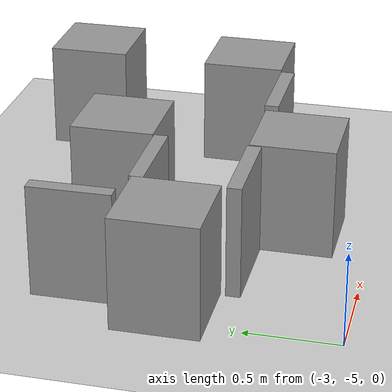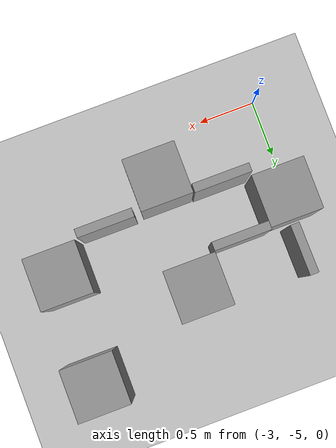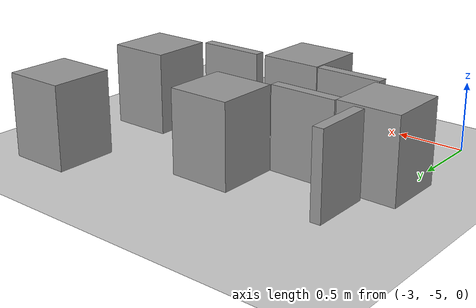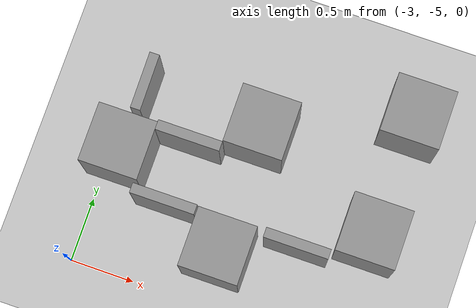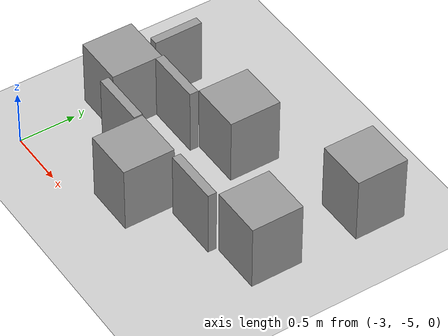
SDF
<sdf version="1.7">
 <world name="default">
  <model name="ground_plane">
   <static>1</static>
   <link name="link">
    <collision name="collision">
     <geometry><plane><normal>0 0 1</normal><size>100 100</size></plane></geometry>
     <surface>
      <contact><collide_bitmask>65535</collide_bitmask></contact>
      <friction><ode><mu>100</mu><mu2>50</mu2></ode></friction>
     </surface>
    </collision>
    <visual name="visual">
     <cast_shadows>0</cast_shadows>
     <geometry><plane><normal>0 0 1</normal><size>100 100</size></plane></geometry>
     <material>
      <script><uri>file://media/materials/scripts/gazebo.material</uri><name>Gazebo/Grey</name></script>
     </material>
    </visual>
   </link>
  </model>
  <model name="lab_box_clone">
   <link name="link">
    <inertial>
     <mass>1</mass>
     <inertia>
      <ixx>0.166667</ixx>
      <ixy>0</ixy>
      <ixz>0</ixz>
      <iyy>0.166667</iyy>
      <iyz>0</iyz>
      <izz>0.166667</izz>
     </inertia>
    </inertial>
    <visual name="visual">
     <geometry><box><size>0.457 0.457 0.609</size></box></geometry>
     <material>
      <script><name>Gazebo/Grey</name><uri>file://media/materials/scripts/gazebo.material</uri></script>
      <shader type="pixel"><normal_map>__default__</normal_map></shader>
      <ambient>0.3 0.3 0.3 1</ambient>
      <diffuse>0.7 0.7 0.7 1</diffuse>
      <specular>0.01 0.01 0.01 1</specular>
      <emissive>0 0 0 1</emissive>
     </material>
    </visual>
    <collision name="collision">
     <geometry><box><size>0.457 0.457 0.609</size></box></geometry>
     <surface>
      <friction>
       <ode><mu>1</mu><mu2>1</mu2><fdir1>0 0 0</fdir1><slip1>0</slip1><slip2>0</slip2></ode>
       <torsional>
        <coefficient>1</coefficient>
        <patch_radius>0</patch_radius>
        <surface_radius>0</surface_radius>
        <use_patch_radius>1</use_patch_radius>
        <ode><slip>0</slip></ode>
       </torsional>
      </friction>
      <bounce><restitution_coefficient>0</restitution_coefficient><threshold>1e+06</threshold></bounce>
      <contact>
       <collide_without_contact>0</collide_without_contact>
       <collide_without_contact_bitmask>1</collide_without_contact_bitmask>
       <collide_bitmask>1</collide_bitmask>
       <ode>
        <soft_cfm>0</soft_cfm>
        <soft_erp>0.2</soft_erp>
        <kp>1e+13</kp>
        <kd>1</kd>
        <max_vel>0.01</max_vel>
        <min_depth>0</min_depth>
       </ode>
       <bullet>
        <split_impulse>1</split_impulse>
        <split_impulse_penetration_threshold>-0.01</split_impulse_penetration_threshold>
        <soft_cfm>0</soft_cfm>
        <soft_erp>0.2</soft_erp>
        <kp>1e+13</kp>
        <kd>1</kd>
       </bullet>
      </contact>
     </surface>
    </collision>
   </link>
   <static>0</static>
   <pose>-1.9452 -4.5883 0.3045 0 -0 0</pose>
  </model>
  <model name="lab_box_clone_0">
   <link name="link">
    <inertial>
     <mass>1</mass>
     <inertia>
      <ixx>0.166667</ixx>
      <ixy>0</ixy>
      <ixz>0</ixz>
      <iyy>0.166667</iyy>
      <iyz>0</iyz>
      <izz>0.166667</izz>
     </inertia>
    </inertial>
    <visual name="visual">
     <geometry><box><size>0.457 0.457 0.609</size></box></geometry>
     <material>
      <script><name>Gazebo/Grey</name><uri>file://media/materials/scripts/gazebo.material</uri></script>
      <shader type="pixel"><normal_map>__default__</normal_map></shader>
      <ambient>0.3 0.3 0.3 1</ambient>
      <diffuse>0.7 0.7 0.7 1</diffuse>
      <specular>0.01 0.01 0.01 1</specular>
      <emissive>0 0 0 1</emissive>
     </material>
    </visual>
    <collision name="collision">
     <geometry><box><size>0.457 0.457 0.609</size></box></geometry>
     <surface>
      <friction>
       <ode><mu>1</mu><mu2>1</mu2><fdir1>0 0 0</fdir1><slip1>0</slip1><slip2>0</slip2></ode>
       <torsional>
        <coefficient>1</coefficient>
        <patch_radius>0</patch_radius>
        <surface_radius>0</surface_radius>
        <use_patch_radius>1</use_patch_radius>
        <ode><slip>0</slip></ode>
       </torsional>
      </friction>
      <bounce><restitution_coefficient>0</restitution_coefficient><threshold>1e+06</threshold></bounce>
      <contact>
       <collide_without_contact>0</collide_without_contact>
       <collide_without_contact_bitmask>1</collide_without_contact_bitmask>
       <collide_bitmask>1</collide_bitmask>
       <ode>
        <soft_cfm>0</soft_cfm>
        <soft_erp>0.2</soft_erp>
        <kp>1e+13</kp>
        <kd>1</kd>
        <max_vel>0.01</max_vel>
        <min_depth>0</min_depth>
       </ode>
       <bullet>
        <split_impulse>1</split_impulse>
        <split_impulse_penetration_threshold>-0.01</split_impulse_penetration_threshold>
        <soft_cfm>0</soft_cfm>
        <soft_erp>0.2</soft_erp>
        <kp>1e+13</kp>
        <kd>1</kd>
       </bullet>
      </contact>
     </surface>
    </collision>
   </link>
   <static>0</static>
   <pose>-1.93878 -3.61582 0.3045 0 -0 0</pose>
  </model>
  <model name="lab_box_clone_1_clone">
   <link name="link">
    <inertial>
     <mass>1</mass>
     <inertia>
      <ixx>0.166667</ixx>
      <ixy>0</ixy>
      <ixz>0</ixz>
      <iyy>0.166667</iyy>
      <iyz>0</iyz>
      <izz>0.166667</izz>
     </inertia>
    </inertial>
    <visual name="visual">
     <geometry><box><size>0.457 0.457 0.609</size></box></geometry>
     <material>
      <script><name>Gazebo/Grey</name><uri>file://media/materials/scripts/gazebo.material</uri></script>
      <shader type="pixel"><normal_map>__default__</normal_map></shader>
      <ambient>0.3 0.3 0.3 1</ambient>
      <diffuse>0.7 0.7 0.7 1</diffuse>
      <specular>0.01 0.01 0.01 1</specular>
      <emissive>0 0 0 1</emissive>
     </material>
    </visual>
    <collision name="collision">
     <geometry><box><size>0.457 0.457 0.609</size></box></geometry>
     <surface>
      <friction>
       <ode><mu>1</mu><mu2>1</mu2><fdir1>0 0 0</fdir1><slip1>0</slip1><slip2>0</slip2></ode>
       <torsional>
        <coefficient>1</coefficient>
        <patch_radius>0</patch_radius>
        <surface_radius>0</surface_radius>
        <use_patch_radius>1</use_patch_radius>
        <ode><slip>0</slip></ode>
       </torsional>
      </friction>
      <bounce><restitution_coefficient>0</restitution_coefficient><threshold>1e+06</threshold></bounce>
      <contact>
       <collide_without_contact>0</collide_without_contact>
       <collide_without_contact_bitmask>1</collide_without_contact_bitmask>
       <collide_bitmask>1</collide_bitmask>
       <ode>
        <soft_cfm>0</soft_cfm>
        <soft_erp>0.2</soft_erp>
        <kp>1e+13</kp>
        <kd>1</kd>
        <max_vel>0.01</max_vel>
        <min_depth>0</min_depth>
       </ode>
       <bullet>
        <split_impulse>1</split_impulse>
        <split_impulse_penetration_threshold>-0.01</split_impulse_penetration_threshold>
        <soft_cfm>0</soft_cfm>
        <soft_erp>0.2</soft_erp>
        <kp>1e+13</kp>
        <kd>1</kd>
       </bullet>
      </contact>
     </surface>
    </collision>
   </link>
   <static>0</static>
   <pose>-2.89314 -4.09712 0.3045 0 -0 0</pose>
  </model>
  <model name="lab_box_clone_0_clone_1">
   <link name="link">
    <inertial>
     <mass>1</mass>
     <inertia>
      <ixx>0.166667</ixx>
      <ixy>0</ixy>
      <ixz>0</ixz>
      <iyy>0.166667</iyy>
      <iyz>0</iyz>
      <izz>0.166667</izz>
     </inertia>
    </inertial>
    <visual name="visual">
     <geometry><box><size>0.457 0.457 0.609</size></box></geometry>
     <material>
      <script><name>Gazebo/Grey</name><uri>file://media/materials/scripts/gazebo.material</uri></script>
      <shader type="pixel"><normal_map>__default__</normal_map></shader>
      <ambient>0.3 0.3 0.3 1</ambient>
      <diffuse>0.7 0.7 0.7 1</diffuse>
      <specular>0.01 0.01 0.01 1</specular>
      <emissive>0 0 0 1</emissive>
     </material>
    </visual>
    <collision name="collision">
     <geometry><box><size>0.457 0.457 0.609</size></box></geometry>
     <surface>
      <friction>
       <ode><mu>1</mu><mu2>1</mu2><fdir1>0 0 0</fdir1><slip1>0</slip1><slip2>0</slip2></ode>
       <torsional>
        <coefficient>1</coefficient>
        <patch_radius>0</patch_radius>
        <surface_radius>0</surface_radius>
        <use_patch_radius>1</use_patch_radius>
        <ode><slip>0</slip></ode>
       </torsional>
      </friction>
      <bounce><restitution_coefficient>0</restitution_coefficient><threshold>1e+06</threshold></bounce>
      <contact>
       <collide_without_contact>0</collide_without_contact>
       <collide_without_contact_bitmask>1</collide_without_contact_bitmask>
       <collide_bitmask>1</collide_bitmask>
       <ode>
        <soft_cfm>0</soft_cfm>
        <soft_erp>0.2</soft_erp>
        <kp>1e+13</kp>
        <kd>1</kd>
        <max_vel>0.01</max_vel>
        <min_depth>0</min_depth>
       </ode>
       <bullet>
        <split_impulse>1</split_impulse>
        <split_impulse_penetration_threshold>-0.01</split_impulse_penetration_threshold>
        <soft_cfm>0</soft_cfm>
        <soft_erp>0.2</soft_erp>
        <kp>1e+13</kp>
        <kd>1</kd>
       </bullet>
      </contact>
     </surface>
    </collision>
   </link>
   <static>0</static>
   <pose>-0.903533 -4.10948 0.3045 0 -0 0</pose>
  </model>
  <model name="lab_box_clone_0_clone_1_clone_clone">
   <link name="link">
    <inertial>
     <mass>1</mass>
     <inertia>
      <ixx>0.166667</ixx>
      <ixy>0</ixy>
      <ixz>0</ixz>
      <iyy>0.166667</iyy>
      <iyz>0</iyz>
      <izz>0.166667</izz>
     </inertia>
    </inertial>
    <visual name="visual">
     <geometry><box><size>0.457 0.457 0.609</size></box></geometry>
     <material>
      <script><name>Gazebo/Grey</name><uri>file://media/materials/scripts/gazebo.material</uri></script>
      <shader type="pixel"><normal_map>__default__</normal_map></shader>
      <ambient>0.3 0.3 0.3 1</ambient>
      <diffuse>0.7 0.7 0.7 1</diffuse>
      <specular>0.01 0.01 0.01 1</specular>
      <emissive>0 0 0 1</emissive>
     </material>
    </visual>
    <collision name="collision">
     <geometry><box><size>0.457 0.457 0.609</size></box></geometry>
     <surface>
      <friction>
       <ode><mu>1</mu><mu2>1</mu2><fdir1>0 0 0</fdir1><slip1>0</slip1><slip2>0</slip2></ode>
       <torsional>
        <coefficient>1</coefficient>
        <patch_radius>0</patch_radius>
        <surface_radius>0</surface_radius>
        <use_patch_radius>1</use_patch_radius>
        <ode><slip>0</slip></ode>
       </torsional>
      </friction>
      <bounce><restitution_coefficient>0</restitution_coefficient><threshold>1e+06</threshold></bounce>
      <contact>
       <collide_without_contact>0</collide_without_contact>
       <collide_without_contact_bitmask>1</collide_without_contact_bitmask>
       <collide_bitmask>1</collide_bitmask>
       <ode>
        <soft_cfm>0</soft_cfm>
        <soft_erp>0.2</soft_erp>
        <kp>1e+13</kp>
        <kd>1</kd>
        <max_vel>0.01</max_vel>
        <min_depth>0</min_depth>
       </ode>
       <bullet>
        <split_impulse>1</split_impulse>
        <split_impulse_penetration_threshold>-0.01</split_impulse_penetration_threshold>
        <soft_cfm>0</soft_cfm>
        <soft_erp>0.2</soft_erp>
        <kp>1e+13</kp>
        <kd>1</kd>
       </bullet>
      </contact>
     </surface>
    </collision>
   </link>
   <static>0</static>
   <pose>-0.877291 -3.16282 0.3045 0 -0 0</pose>
  </model>
  <model name="lab_box_clone_0_clone_1_clone_0">
   <link name="link">
    <inertial>
     <mass>1</mass>
     <inertia>
      <ixx>0.166667</ixx>
      <ixy>0</ixy>
      <ixz>0</ixz>
      <iyy>0.166667</iyy>
      <iyz>0</iyz>
      <izz>0.166667</izz>
     </inertia>
    </inertial>
    <visual name="visual">
     <geometry><box><size>0.498678 0.07691 0.609</size></box></geometry>
     <material>
      <script><name>Gazebo/Grey</name><uri>file://media/materials/scripts/gazebo.material</uri></script>
      <shader type="pixel"><normal_map>__default__</normal_map></shader>
      <ambient>0.3 0.3 0.3 1</ambient>
      <diffuse>0.7 0.7 0.7 1</diffuse>
      <specular>0.01 0.01 0.01 1</specular>
      <emissive>0 0 0 1</emissive>
     </material>
    </visual>
    <collision name="collision">
     <geometry><box><size>0.498678 0.07691 0.609</size></box></geometry>
     <surface>
      <friction>
       <ode><mu>1</mu><mu2>1</mu2><fdir1>0 0 0</fdir1><slip1>0</slip1><slip2>0</slip2></ode>
       <torsional>
        <coefficient>1</coefficient>
        <patch_radius>0</patch_radius>
        <surface_radius>0</surface_radius>
        <use_patch_radius>1</use_patch_radius>
        <ode><slip>0</slip></ode>
       </torsional>
      </friction>
      <bounce><restitution_coefficient>0</restitution_coefficient><threshold>1e+06</threshold></bounce>
      <contact>
       <collide_without_contact>0</collide_without_contact>
       <collide_without_contact_bitmask>1</collide_without_contact_bitmask>
       <collide_bitmask>1</collide_bitmask>
       <ode>
        <soft_cfm>0</soft_cfm>
        <soft_erp>0.2</soft_erp>
        <kp>1e+13</kp>
        <kd>1</kd>
        <max_vel>0.01</max_vel>
        <min_depth>0</min_depth>
       </ode>
       <bullet>
        <split_impulse>1</split_impulse>
        <split_impulse_penetration_threshold>-0.01</split_impulse_penetration_threshold>
        <soft_cfm>0</soft_cfm>
        <soft_erp>0.2</soft_erp>
        <kp>1e+13</kp>
        <kd>1</kd>
       </bullet>
      </contact>
     </surface>
    </collision>
   </link>
   <static>0</static>
   <pose>-1.40607 -4.38091 0.304487 0 -8e-06 -2e-05</pose>
  </model>
  <model name="lab_box_clone_0_clone_1_clone_0_clone">
   <link name="link">
    <inertial>
     <mass>1</mass>
     <inertia>
      <ixx>0.166667</ixx>
      <ixy>0</ixy>
      <ixz>0</ixz>
      <iyy>0.166667</iyy>
      <iyz>0</iyz>
      <izz>0.166667</izz>
     </inertia>
    </inertial>
    <visual name="visual">
     <geometry><box><size>0.49868 0.07691 0.609</size></box></geometry>
     <material>
      <script><name>Gazebo/Grey</name><uri>file://media/materials/scripts/gazebo.material</uri></script>
      <shader type="pixel"><normal_map>__default__</normal_map></shader>
      <ambient>0.3 0.3 0.3 1</ambient>
      <diffuse>0.7 0.7 0.7 1</diffuse>
      <specular>0.01 0.01 0.01 1</specular>
      <emissive>0 0 0 1</emissive>
     </material>
    </visual>
    <collision name="collision">
     <geometry><box><size>0.49868 0.07691 0.609</size></box></geometry>
     <surface>
      <friction>
       <ode><mu>1</mu><mu2>1</mu2><fdir1>0 0 0</fdir1><slip1>0</slip1><slip2>0</slip2></ode>
       <torsional>
        <coefficient>1</coefficient>
        <patch_radius>0</patch_radius>
        <surface_radius>0</surface_radius>
        <use_patch_radius>1</use_patch_radius>
        <ode><slip>0</slip></ode>
       </torsional>
      </friction>
      <bounce><restitution_coefficient>0</restitution_coefficient><threshold>1e+06</threshold></bounce>
      <contact>
       <collide_without_contact>0</collide_without_contact>
       <collide_without_contact_bitmask>1</collide_without_contact_bitmask>
       <collide_bitmask>1</collide_bitmask>
       <ode>
        <soft_cfm>0</soft_cfm>
        <soft_erp>0.2</soft_erp>
        <kp>1e+13</kp>
        <kd>1</kd>
        <max_vel>0.01</max_vel>
        <min_depth>0</min_depth>
       </ode>
       <bullet>
        <split_impulse>1</split_impulse>
        <split_impulse_penetration_threshold>-0.01</split_impulse_penetration_threshold>
        <soft_cfm>0</soft_cfm>
        <soft_erp>0.2</soft_erp>
        <kp>1e+13</kp>
        <kd>1</kd>
       </bullet>
      </contact>
     </surface>
    </collision>
   </link>
   <static>0</static>
   <pose>-2.43355 -4.3915 0.304487 0 -8e-06 -2e-05</pose>
  </model>
  <model name="lab_box_clone_0_clone_1_clone_0_clone_clone_0_clone_clone">
   <link name="link">
    <inertial>
     <mass>1</mass>
     <inertia>
      <ixx>0.166667</ixx>
      <ixy>0</ixy>
      <ixz>0</ixz>
      <iyy>0.166667</iyy>
      <iyz>0</iyz>
      <izz>0.166667</izz>
     </inertia>
    </inertial>
    <visual name="visual">
     <geometry><box><size>0.43955 0.07691 0.609</size></box></geometry>
     <material>
      <script><name>Gazebo/Grey</name><uri>file://media/materials/scripts/gazebo.material</uri></script>
      <shader type="pixel"><normal_map>__default__</normal_map></shader>
      <ambient>0.3 0.3 0.3 1</ambient>
      <diffuse>0.7 0.7 0.7 1</diffuse>
      <specular>0.01 0.01 0.01 1</specular>
      <emissive>0 0 0 1</emissive>
     </material>
    </visual>
    <collision name="collision">
     <geometry><box><size>0.43955 0.07691 0.609</size></box></geometry>
     <surface>
      <friction>
       <ode><mu>1</mu><mu2>1</mu2><fdir1>0 0 0</fdir1><slip1>0</slip1><slip2>0</slip2></ode>
       <torsional>
        <coefficient>1</coefficient>
        <patch_radius>0</patch_radius>
        <surface_radius>0</surface_radius>
        <use_patch_radius>1</use_patch_radius>
        <ode><slip>0</slip></ode>
       </torsional>
      </friction>
      <bounce><restitution_coefficient>0</restitution_coefficient><threshold>1e+06</threshold></bounce>
      <contact>
       <collide_without_contact>0</collide_without_contact>
       <collide_without_contact_bitmask>1</collide_without_contact_bitmask>
       <collide_bitmask>1</collide_bitmask>
       <ode>
        <soft_cfm>0</soft_cfm>
        <soft_erp>0.2</soft_erp>
        <kp>1e+13</kp>
        <kd>1</kd>
        <max_vel>0.01</max_vel>
        <min_depth>0</min_depth>
       </ode>
       <bullet>
        <split_impulse>1</split_impulse>
        <split_impulse_penetration_threshold>-0.01</split_impulse_penetration_threshold>
        <soft_cfm>0</soft_cfm>
        <soft_erp>0.2</soft_erp>
        <kp>1e+13</kp>
        <kd>1</kd>
       </bullet>
      </contact>
     </surface>
    </collision>
   </link>
   <static>0</static>
   <pose>-2.85594 -3.61231 0.304493 -8e-06 -0 1.58103</pose>
  </model>
  <model name="lab_box_clone_0_clone_1_clone_0_clone_clone_1">
   <link name="link">
    <inertial>
     <mass>1</mass>
     <inertia>
      <ixx>0.166667</ixx>
      <ixy>0</ixy>
      <ixz>0</ixz>
      <iyy>0.166667</iyy>
      <iyz>0</iyz>
      <izz>0.166667</izz>
     </inertia>
    </inertial>
    <visual name="visual">
     <geometry><box><size>0.49868 0.07691 0.609</size></box></geometry>
     <material>
      <script><name>Gazebo/Grey</name><uri>file://media/materials/scripts/gazebo.material</uri></script>
      <shader type="pixel"><normal_map>__default__</normal_map></shader>
      <ambient>0.3 0.3 0.3 1</ambient>
      <diffuse>0.7 0.7 0.7 1</diffuse>
      <specular>0.01 0.01 0.01 1</specular>
      <emissive>0 0 0 1</emissive>
     </material>
    </visual>
    <collision name="collision">
     <geometry><box><size>0.49868 0.07691 0.609</size></box></geometry>
     <surface>
      <friction>
       <ode><mu>1</mu><mu2>1</mu2><fdir1>0 0 0</fdir1><slip1>0</slip1><slip2>0</slip2></ode>
       <torsional>
        <coefficient>1</coefficient>
        <patch_radius>0</patch_radius>
        <surface_radius>0</surface_radius>
        <use_patch_radius>1</use_patch_radius>
        <ode><slip>0</slip></ode>
       </torsional>
      </friction>
      <bounce><restitution_coefficient>0</restitution_coefficient><threshold>1e+06</threshold></bounce>
      <contact>
       <collide_without_contact>0</collide_without_contact>
       <collide_without_contact_bitmask>1</collide_without_contact_bitmask>
       <collide_bitmask>1</collide_bitmask>
       <ode>
        <soft_cfm>0</soft_cfm>
        <soft_erp>0.2</soft_erp>
        <kp>1e+13</kp>
        <kd>1</kd>
        <max_vel>0.01</max_vel>
        <min_depth>0</min_depth>
       </ode>
       <bullet>
        <split_impulse>1</split_impulse>
        <split_impulse_penetration_threshold>-0.01</split_impulse_penetration_threshold>
        <soft_cfm>0</soft_cfm>
        <soft_erp>0.2</soft_erp>
        <kp>1e+13</kp>
        <kd>1</kd>
       </bullet>
      </contact>
     </surface>
    </collision>
   </link>
   <static>0</static>
   <pose>-2.41554 -3.88985 0.304487 0 -8e-06 -2e-05</pose>
  </model>
 </world>
</sdf>
